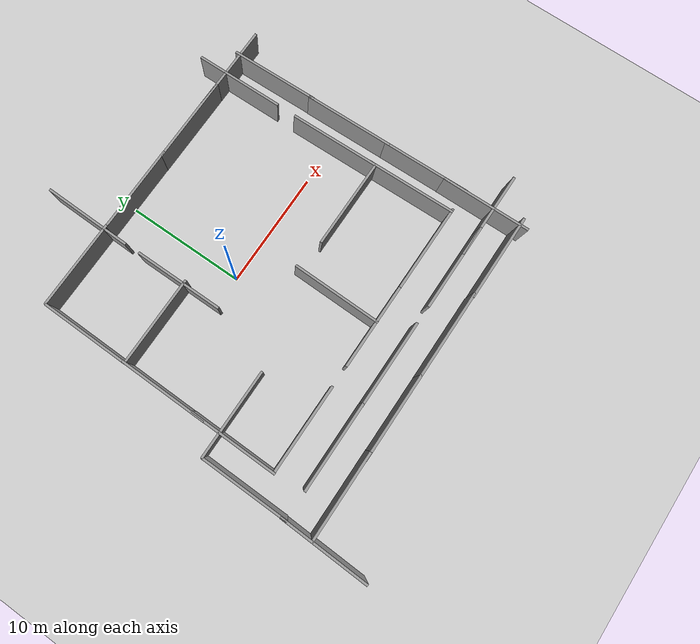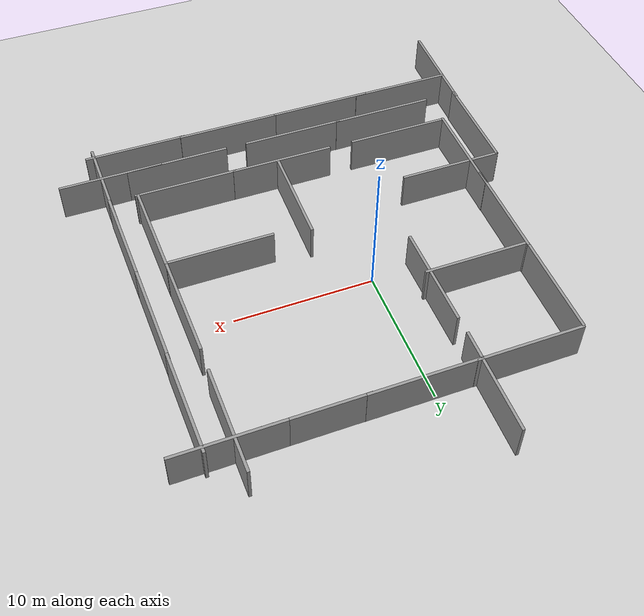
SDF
<sdf version="1.7">
 <world name="default">
  <light name="sun" type="directional">
   <pose>0 0 10 0 -0 0</pose>
   <diffuse>0.8 0.8 0.8 1</diffuse>
   <specular>0.2 0.2 0.2 1</specular>
   <attenuation>
    <range>1000</range>
    <constant>0.9</constant>
    <linear>0.01</linear>
    <quadratic>0.001</quadratic>
   </attenuation>
   <direction>-0.5 0.1 -0.9</direction>
   <spot><inner_angle>0</inner_angle><outer_angle>0</outer_angle><falloff>0</falloff></spot>
  </light>
  <model name="ground_plane">
   <static>1</static>
   <link name="link">
    <collision name="collision">
     <geometry><plane><normal>0 0 1</normal><size>100 100</size></plane></geometry>
     <surface>
      <contact><collide_bitmask>65535</collide_bitmask></contact>
      <friction><ode><mu>100</mu><mu2>50</mu2></ode></friction>
     </surface>
    </collision>
    <visual name="visual">
     <cast_shadows>0</cast_shadows>
     <geometry><plane><normal>0 0 1</normal><size>100 100</size></plane></geometry>
     <material>
      <script><uri>file://media/materials/scripts/gazebo.material</uri><name>Gazebo/Grey</name></script>
     </material>
    </visual>
   </link>
  </model>
  <gravity>0 0 -9.8</gravity>
  <magnetic_field>6e-06 2.3e-05 -4.2e-05</magnetic_field>
  <atmosphere type="adiabatic"/>
  <physics type="ode">
   <max_step_size>0.001</max_step_size>
   <real_time_factor>1</real_time_factor>
   <real_time_update_rate>1000</real_time_update_rate>
  </physics>
  <scene><ambient>0.4 0.4 0.4 1</ambient><background>0.7 0.7 0.7 1</background><shadows>1</shadows></scene>
  <spherical_coordinates>
   <surface_model>EARTH_WGS84</surface_model>
   <latitude_deg>0</latitude_deg>
   <longitude_deg>0</longitude_deg>
   <elevation>0</elevation>
   <heading_deg>0</heading_deg>
  </spherical_coordinates>
  <model name="grey_wall">
   <static>1</static>
   <link name="link">
    <pose>0 0 1.4 0 -0 0</pose>
    <collision name="collision"><geometry><box><size>7.5 0.2 2.8</size></box></geometry></collision>
    <visual name="visual">
     <cast_shadows>0</cast_shadows>
     <geometry><box><size>7.5 0.2 2.8</size></box></geometry>
     <material>
      <script>
       <uri>model://grey_wall/materials/scripts</uri>
       <uri>model://grey_wall/materials/textures</uri>
       <name>vrc/grey_wall</name>
      </script>
     </material>
    </visual>
   </link>
   <pose>-6.30997 10.1204 0 0 -0 0</pose>
  </model>
  <model name="grey_wall_0">
   <static>1</static>
   <link name="link">
    <pose>0 0 1.4 0 -0 0</pose>
    <collision name="collision"><geometry><box><size>7.5 0.2 2.8</size></box></geometry></collision>
    <visual name="visual">
     <cast_shadows>0</cast_shadows>
     <geometry><box><size>7.5 0.2 2.8</size></box></geometry>
     <material>
      <script>
       <uri>model://grey_wall/materials/scripts</uri>
       <uri>model://grey_wall/materials/textures</uri>
       <name>vrc/grey_wall</name>
      </script>
     </material>
    </visual>
   </link>
   <pose>1.01321 10.1008 0 0 -0 0</pose>
  </model>
  <model name="grey_wall_1">
   <static>1</static>
   <link name="link">
    <pose>0 0 1.4 0 -0 0</pose>
    <collision name="collision"><geometry><box><size>7.5 0.2 2.8</size></box></geometry></collision>
    <visual name="visual">
     <cast_shadows>0</cast_shadows>
     <geometry><box><size>7.5 0.2 2.8</size></box></geometry>
     <material>
      <script>
       <uri>model://grey_wall/materials/scripts</uri>
       <uri>model://grey_wall/materials/textures</uri>
       <name>vrc/grey_wall</name>
      </script>
     </material>
    </visual>
   </link>
   <pose>8.04157 10.088 0 0 -0 0</pose>
  </model>
  <model name="grey_wall_2">
   <static>1</static>
   <link name="link">
    <pose>0 0 1.4 0 -0 0</pose>
    <collision name="collision"><geometry><box><size>7.5 0.2 2.8</size></box></geometry></collision>
    <visual name="visual">
     <cast_shadows>0</cast_shadows>
     <geometry><box><size>7.5 0.2 2.8</size></box></geometry>
     <material>
      <script>
       <uri>model://grey_wall/materials/scripts</uri>
       <uri>model://grey_wall/materials/textures</uri>
       <name>vrc/grey_wall</name>
      </script>
     </material>
    </visual>
   </link>
   <pose>-10.0683 6.35593 0 0 0 -1.58463</pose>
  </model>
  <model name="grey_wall_2_clone">
   <static>1</static>
   <link name="link">
    <pose>0 0 1.4 0 -0 0</pose>
    <collision name="collision"><geometry><box><size>7.5 0.2 2.8</size></box></geometry></collision>
    <visual name="visual">
     <cast_shadows>0</cast_shadows>
     <geometry><box><size>7.5 0.2 2.8</size></box></geometry>
     <material>
      <script>
       <uri>model://grey_wall/materials/scripts</uri>
       <uri>model://grey_wall/materials/textures</uri>
       <name>vrc/grey_wall</name>
      </script>
     </material>
    </visual>
   </link>
   <pose>-10.1574 -0.932229 0 0 0 -1.58463</pose>
  </model>
  <model name="grey_wall_2_clone_0">
   <static>1</static>
   <link name="link">
    <pose>0 0 1.4 0 -0 0</pose>
    <collision name="collision"><geometry><box><size>7.5 0.2 2.8</size></box></geometry></collision>
    <visual name="visual">
     <cast_shadows>0</cast_shadows>
     <geometry><box><size>7.5 0.2 2.8</size></box></geometry>
     <material>
      <script>
       <uri>model://grey_wall/materials/scripts</uri>
       <uri>model://grey_wall/materials/textures</uri>
       <name>vrc/grey_wall</name>
      </script>
     </material>
    </visual>
   </link>
   <pose>-10.2246 -7.25317 0 0 0 -1.58463</pose>
  </model>
  <model name="grey_wall_2_clone_1">
   <static>1</static>
   <link name="link">
    <pose>0 0 1.4 0 -0 0</pose>
    <collision name="collision"><geometry><box><size>7.5 0.2 2.8</size></box></geometry></collision>
    <visual name="visual">
     <cast_shadows>0</cast_shadows>
     <geometry><box><size>7.5 0.2 2.8</size></box></geometry>
     <material>
      <script>
       <uri>model://grey_wall/materials/scripts</uri>
       <uri>model://grey_wall/materials/textures</uri>
       <name>vrc/grey_wall</name>
      </script>
     </material>
    </visual>
   </link>
   <pose>-6.56753 -10.888 0 0 -0 3.13837</pose>
  </model>
  <model name="grey_wall_2_clone_1_clone">
   <static>1</static>
   <link name="link">
    <pose>0 0 1.4 0 -0 0</pose>
    <collision name="collision"><geometry><box><size>7.5 0.2 2.8</size></box></geometry></collision>
    <visual name="visual">
     <cast_shadows>0</cast_shadows>
     <geometry><box><size>7.5 0.2 2.8</size></box></geometry>
     <material>
      <script>
       <uri>model://grey_wall/materials/scripts</uri>
       <uri>model://grey_wall/materials/textures</uri>
       <name>vrc/grey_wall</name>
      </script>
     </material>
    </visual>
   </link>
   <pose>2.66595 -10.9311 0 0 -0 3.13837</pose>
  </model>
  <model name="grey_wall_2_clone_1_clone_0">
   <static>1</static>
   <link name="link">
    <pose>0 0 1.4 0 -0 0</pose>
    <collision name="collision"><geometry><box><size>7.5 0.2 2.8</size></box></geometry></collision>
    <visual name="visual">
     <cast_shadows>0</cast_shadows>
     <geometry><box><size>7.5 0.2 2.8</size></box></geometry>
     <material>
      <script>
       <uri>model://grey_wall/materials/scripts</uri>
       <uri>model://grey_wall/materials/textures</uri>
       <name>vrc/grey_wall</name>
      </script>
     </material>
    </visual>
   </link>
   <pose>9.90164 -10.9645 0 0 -0 3.13837</pose>
  </model>
  <model name="grey_wall_2_clone_1_clone_1">
   <static>1</static>
   <link name="link">
    <pose>0 0 1.4 0 -0 0</pose>
    <collision name="collision"><geometry><box><size>7.5 0.2 2.8</size></box></geometry></collision>
    <visual name="visual">
     <cast_shadows>0</cast_shadows>
     <geometry><box><size>7.5 0.2 2.8</size></box></geometry>
     <material>
      <script>
       <uri>model://grey_wall/materials/scripts</uri>
       <uri>model://grey_wall/materials/textures</uri>
       <name>vrc/grey_wall</name>
      </script>
     </material>
    </visual>
   </link>
   <pose>13.3314 -7.31576 0 0 -0 1.59491</pose>
  </model>
  <model name="grey_wall_2_clone_1_clone_1_clone">
   <static>1</static>
   <link name="link">
    <pose>0 0 1.4 0 -0 0</pose>
    <collision name="collision"><geometry><box><size>7.5 0.2 2.8</size></box></geometry></collision>
    <visual name="visual">
     <cast_shadows>0</cast_shadows>
     <geometry><box><size>7.5 0.2 2.8</size></box></geometry>
     <material>
      <script>
       <uri>model://grey_wall/materials/scripts</uri>
       <uri>model://grey_wall/materials/textures</uri>
       <name>vrc/grey_wall</name>
      </script>
     </material>
    </visual>
   </link>
   <pose>13.145 -0.293998 0 0 -0 1.59491</pose>
  </model>
  <model name="grey_wall_2_clone_1_clone_1_clone_0">
   <static>1</static>
   <link name="link">
    <pose>0 0 1.4 0 -0 0</pose>
    <collision name="collision"><geometry><box><size>7.5 0.2 2.8</size></box></geometry></collision>
    <visual name="visual">
     <cast_shadows>0</cast_shadows>
     <geometry><box><size>7.5 0.2 2.8</size></box></geometry>
     <material>
      <script>
       <uri>model://grey_wall/materials/scripts</uri>
       <uri>model://grey_wall/materials/textures</uri>
       <name>vrc/grey_wall</name>
      </script>
     </material>
    </visual>
   </link>
   <pose>15.1854 -0.314675 0 0 -0 1.59491</pose>
  </model>
  <model name="grey_wall_2_clone_1_clone_1_clone_1">
   <static>1</static>
   <link name="link">
    <pose>0 0 1.4 0 -0 0</pose>
    <collision name="collision"><geometry><box><size>7.5 0.2 2.8</size></box></geometry></collision>
    <visual name="visual">
     <cast_shadows>0</cast_shadows>
     <geometry><box><size>7.5 0.2 2.8</size></box></geometry>
     <material>
      <script>
       <uri>model://grey_wall/materials/scripts</uri>
       <uri>model://grey_wall/materials/textures</uri>
       <name>vrc/grey_wall</name>
      </script>
     </material>
    </visual>
   </link>
   <pose>15.3558 -7.44679 0 0 -0 1.59491</pose>
  </model>
  <model name="grey_wall_2_clone_1_clone_0_clone">
   <static>1</static>
   <link name="link">
    <pose>0 0 1.4 0 -0 0</pose>
    <collision name="collision"><geometry><box><size>7.5 0.2 2.8</size></box></geometry></collision>
    <visual name="visual">
     <cast_shadows>0</cast_shadows>
     <geometry><box><size>7.5 0.2 2.8</size></box></geometry>
     <material>
      <script>
       <uri>model://grey_wall/materials/scripts</uri>
       <uri>model://grey_wall/materials/textures</uri>
       <name>vrc/grey_wall</name>
      </script>
     </material>
    </visual>
   </link>
   <pose>9.86574 -13.4984 0 0 -0 3.13837</pose>
  </model>
  <model name="grey_wall_2_clone_1_clone_0_clone_0">
   <static>1</static>
   <link name="link">
    <pose>0 0 1.4 0 -0 0</pose>
    <collision name="collision"><geometry><box><size>7.5 0.2 2.8</size></box></geometry></collision>
    <visual name="visual">
     <cast_shadows>0</cast_shadows>
     <geometry><box><size>7.5 0.2 2.8</size></box></geometry>
     <material>
      <script>
       <uri>model://grey_wall/materials/scripts</uri>
       <uri>model://grey_wall/materials/textures</uri>
       <name>vrc/grey_wall</name>
      </script>
     </material>
    </visual>
   </link>
   <pose>0.878904 -13.4476 0 0 -0 3.13837</pose>
  </model>
  <model name="grey_wall_2_clone_1_clone_0_clone_1">
   <static>1</static>
   <link name="link">
    <pose>0 0 1.4 0 -0 0</pose>
    <collision name="collision"><geometry><box><size>7.5 0.2 2.8</size></box></geometry></collision>
    <visual name="visual">
     <cast_shadows>0</cast_shadows>
     <geometry><box><size>7.5 0.2 2.8</size></box></geometry>
     <material>
      <script>
       <uri>model://grey_wall/materials/scripts</uri>
       <uri>model://grey_wall/materials/textures</uri>
       <name>vrc/grey_wall</name>
      </script>
     </material>
    </visual>
   </link>
   <pose>-6.31528 -13.4102 0 0 -0 3.13837</pose>
  </model>
  <model name="grey_wall_2_clone_1_clone_0_clone_2">
   <static>1</static>
   <link name="link">
    <pose>0 0 1.4 0 -0 0</pose>
    <collision name="collision"><geometry><box><size>7.5 0.2 2.8</size></box></geometry></collision>
    <visual name="visual">
     <cast_shadows>0</cast_shadows>
     <geometry><box><size>7.5 0.2 2.8</size></box></geometry>
     <material>
      <script>
       <uri>model://grey_wall/materials/scripts</uri>
       <uri>model://grey_wall/materials/textures</uri>
       <name>vrc/grey_wall</name>
      </script>
     </material>
    </visual>
   </link>
   <pose>-12.371 -9.76414 0 0 -0 1.55819</pose>
  </model>
  <model name="grey_wall_2_clone_1_clone_0_clone_3">
   <static>1</static>
   <link name="link">
    <pose>0 0 1.4 0 -0 0</pose>
    <collision name="collision"><geometry><box><size>7.5 0.2 2.8</size></box></geometry></collision>
    <visual name="visual">
     <cast_shadows>0</cast_shadows>
     <geometry><box><size>7.5 0.2 2.8</size></box></geometry>
     <material>
      <script>
       <uri>model://grey_wall/materials/scripts</uri>
       <uri>model://grey_wall/materials/textures</uri>
       <name>vrc/grey_wall</name>
      </script>
     </material>
    </visual>
   </link>
   <pose>-8.87046 -15.7278 0 0 -0 3.13837</pose>
  </model>
  <model name="grey_wall_2_clone_1_clone_0_clone_4">
   <static>1</static>
   <link name="link">
    <pose>0 0 1.4 0 -0 0</pose>
    <collision name="collision"><geometry><box><size>7.5 0.2 2.8</size></box></geometry></collision>
    <visual name="visual">
     <cast_shadows>0</cast_shadows>
     <geometry><box><size>7.5 0.2 2.8</size></box></geometry>
     <material>
      <script>
       <uri>model://grey_wall/materials/scripts</uri>
       <uri>model://grey_wall/materials/textures</uri>
       <name>vrc/grey_wall</name>
      </script>
     </material>
    </visual>
   </link>
   <pose>-12.5611 -16.7085 0 0 -0 1.53869</pose>
  </model>
  <model name="grey_wall_2_clone_1_clone_0_clone_3_clone">
   <static>1</static>
   <link name="link">
    <pose>0 0 1.4 0 -0 0</pose>
    <collision name="collision"><geometry><box><size>7.5 0.2 2.8</size></box></geometry></collision>
    <visual name="visual">
     <cast_shadows>0</cast_shadows>
     <geometry><box><size>7.5 0.2 2.8</size></box></geometry>
     <material>
      <script>
       <uri>model://grey_wall/materials/scripts</uri>
       <uri>model://grey_wall/materials/textures</uri>
       <name>vrc/grey_wall</name>
      </script>
     </material>
    </visual>
   </link>
   <pose>-2.17743 -15.77 0 0 -0 3.13837</pose>
  </model>
  <model name="grey_wall_2_clone_1_clone_0_clone_3_clone_0">
   <static>1</static>
   <link name="link">
    <pose>0 0 1.4 0 -0 0</pose>
    <collision name="collision"><geometry><box><size>7.5 0.2 2.8</size></box></geometry></collision>
    <visual name="visual">
     <cast_shadows>0</cast_shadows>
     <geometry><box><size>7.5 0.2 2.8</size></box></geometry>
     <material>
      <script>
       <uri>model://grey_wall/materials/scripts</uri>
       <uri>model://grey_wall/materials/textures</uri>
       <name>vrc/grey_wall</name>
      </script>
     </material>
    </visual>
   </link>
   <pose>5.24369 -15.7918 0 0 -0 3.13837</pose>
  </model>
  <model name="grey_wall_2_clone_1_clone_0_clone_3_clone_1">
   <static>1</static>
   <link name="link">
    <pose>0 0 1.4 0 -0 0</pose>
    <collision name="collision"><geometry><box><size>7.5 0.2 2.8</size></box></geometry></collision>
    <visual name="visual">
     <cast_shadows>0</cast_shadows>
     <geometry><box><size>7.5 0.2 2.8</size></box></geometry>
     <material>
      <script>
       <uri>model://grey_wall/materials/scripts</uri>
       <uri>model://grey_wall/materials/textures</uri>
       <name>vrc/grey_wall</name>
      </script>
     </material>
    </visual>
   </link>
   <pose>12.3706 -15.8512 0 0 -0 3.13837</pose>
  </model>
  <model name="grey_wall_2_clone_1_clone_0_clone_3_clone_2">
   <static>1</static>
   <link name="link">
    <pose>0 0 1.4 0 -0 0</pose>
    <collision name="collision"><geometry><box><size>7.5 0.2 2.8</size></box></geometry></collision>
    <visual name="visual">
     <cast_shadows>0</cast_shadows>
     <geometry><box><size>7.5 0.2 2.8</size></box></geometry>
     <material>
      <script>
       <uri>model://grey_wall/materials/scripts</uri>
       <uri>model://grey_wall/materials/textures</uri>
       <name>vrc/grey_wall</name>
      </script>
     </material>
    </visual>
   </link>
   <pose>15.4436 -12.8279 0 0 -0 1.58624</pose>
  </model>
  <model name="grey_wall_2_clone_1_clone_0_clone_clone">
   <static>1</static>
   <link name="link">
    <pose>0 0 1.4 0 -0 0</pose>
    <collision name="collision"><geometry><box><size>7.5 0.2 2.8</size></box></geometry></collision>
    <visual name="visual">
     <cast_shadows>0</cast_shadows>
     <geometry><box><size>7.5 0.2 2.8</size></box></geometry>
     <material>
      <script>
       <uri>model://grey_wall/materials/scripts</uri>
       <uri>model://grey_wall/materials/textures</uri>
       <name>vrc/grey_wall</name>
      </script>
     </material>
    </visual>
   </link>
   <pose>14.786 -13.5151 0 0 -0 3.13837</pose>
  </model>
  <model name="grey_wall_clone">
   <static>1</static>
   <link name="link">
    <pose>0 0 1.4 0 -0 0</pose>
    <collision name="collision"><geometry><box><size>7.5 0.2 2.8</size></box></geometry></collision>
    <visual name="visual">
     <cast_shadows>0</cast_shadows>
     <geometry><box><size>7.5 0.2 2.8</size></box></geometry>
     <material>
      <script>
       <uri>model://grey_wall/materials/scripts</uri>
       <uri>model://grey_wall/materials/textures</uri>
       <name>vrc/grey_wall</name>
      </script>
     </material>
    </visual>
   </link>
   <pose>-8.62605 -6.07176 0 0 -0 0</pose>
  </model>
  <model name="grey_wall_clone_0">
   <static>1</static>
   <link name="link">
    <pose>0 0 1.4 0 -0 0</pose>
    <collision name="collision"><geometry><box><size>7.5 0.2 2.8</size></box></geometry></collision>
    <visual name="visual">
     <cast_shadows>0</cast_shadows>
     <geometry><box><size>7.5 0.2 2.8</size></box></geometry>
     <material>
      <script>
       <uri>model://grey_wall/materials/scripts</uri>
       <uri>model://grey_wall/materials/textures</uri>
       <name>vrc/grey_wall</name>
      </script>
     </material>
    </visual>
   </link>
   <pose>-6.32173 2.57938 0 0 -0 0</pose>
  </model>
  <model name="grey_wall_clone_1">
   <static>1</static>
   <link name="link">
    <pose>0 0 1.4 0 -0 0</pose>
    <collision name="collision"><geometry><box><size>7.5 0.2 2.8</size></box></geometry></collision>
    <visual name="visual">
     <cast_shadows>0</cast_shadows>
     <geometry><box><size>7.5 0.2 2.8</size></box></geometry>
     <material>
      <script>
       <uri>model://grey_wall/materials/scripts</uri>
       <uri>model://grey_wall/materials/textures</uri>
       <name>vrc/grey_wall</name>
      </script>
     </material>
    </visual>
   </link>
   <pose>-2.89798 3.06137 0 0 0 -1.57111</pose>
  </model>
  <model name="grey_wall_clone_2">
   <static>1</static>
   <link name="link">
    <pose>0 0 1.4 0 -0 0</pose>
    <collision name="collision"><geometry><box><size>7.5 0.2 2.8</size></box></geometry></collision>
    <visual name="visual">
     <cast_shadows>0</cast_shadows>
     <geometry><box><size>7.5 0.2 2.8</size></box></geometry>
     <material>
      <script>
       <uri>model://grey_wall/materials/scripts</uri>
       <uri>model://grey_wall/materials/textures</uri>
       <name>vrc/grey_wall</name>
      </script>
     </material>
    </visual>
   </link>
   <pose>-2.86945 11.7517 0 0 0 -1.58744</pose>
  </model>
  <model name="grey_wall_clone_3">
   <static>1</static>
   <link name="link">
    <pose>0 0 1.4 0 -0 0</pose>
    <collision name="collision"><geometry><box><size>7.5 0.2 2.8</size></box></geometry></collision>
    <visual name="visual">
     <cast_shadows>0</cast_shadows>
     <geometry><box><size>7.5 0.2 2.8</size></box></geometry>
     <material>
      <script>
       <uri>model://grey_wall/materials/scripts</uri>
       <uri>model://grey_wall/materials/textures</uri>
       <name>vrc/grey_wall</name>
      </script>
     </material>
    </visual>
   </link>
   <pose>13.4075 10.089 0 0 -0 0</pose>
  </model>
  <model name="grey_wall_clone_4">
   <static>1</static>
   <link name="link">
    <pose>0 0 1.4 0 -0 0</pose>
    <collision name="collision"><geometry><box><size>7.5 0.2 2.8</size></box></geometry></collision>
    <visual name="visual">
     <cast_shadows>0</cast_shadows>
     <geometry><box><size>7.5 0.2 2.8</size></box></geometry>
     <material>
      <script>
       <uri>model://grey_wall/materials/scripts</uri>
       <uri>model://grey_wall/materials/textures</uri>
       <name>vrc/grey_wall</name>
      </script>
     </material>
    </visual>
   </link>
   <pose>15.0346 6.75015 0 0 0 -1.54496</pose>
  </model>
  <model name="grey_wall_clone_5">
   <static>1</static>
   <link name="link">
    <pose>0 0 1.4 0 -0 0</pose>
    <collision name="collision"><geometry><box><size>7.5 0.2 2.8</size></box></geometry></collision>
    <visual name="visual">
     <cast_shadows>0</cast_shadows>
     <geometry><box><size>7.5 0.2 2.8</size></box></geometry>
     <material>
      <script>
       <uri>model://grey_wall/materials/scripts</uri>
       <uri>model://grey_wall/materials/textures</uri>
       <name>vrc/grey_wall</name>
      </script>
     </material>
    </visual>
   </link>
   <pose>13.0121 8.79302 0 0 0 -1.55625</pose>
  </model>
  <model name="grey_wall_clone_6">
   <static>1</static>
   <link name="link">
    <pose>0 0 1.4 0 -0 0</pose>
    <collision name="collision"><geometry><box><size>7.5 0.2 2.8</size></box></geometry></collision>
    <visual name="visual">
     <cast_shadows>0</cast_shadows>
     <geometry><box><size>7.5 0.2 2.8</size></box></geometry>
     <material>
      <script>
       <uri>model://grey_wall/materials/scripts</uri>
       <uri>model://grey_wall/materials/textures</uri>
       <name>vrc/grey_wall</name>
      </script>
     </material>
    </visual>
   </link>
   <pose>9.40772 -4.1107 0 0 -0 0</pose>
  </model>
  <model name="grey_wall_clone_7">
   <static>1</static>
   <link name="link">
    <pose>0 0 1.4 0 -0 0</pose>
    <collision name="collision"><geometry><box><size>7.5 0.2 2.8</size></box></geometry></collision>
    <visual name="visual">
     <cast_shadows>0</cast_shadows>
     <geometry><box><size>7.5 0.2 2.8</size></box></geometry>
     <material>
      <script>
       <uri>model://grey_wall/materials/scripts</uri>
       <uri>model://grey_wall/materials/textures</uri>
       <name>vrc/grey_wall</name>
      </script>
     </material>
    </visual>
   </link>
   <pose>3.03463 -7.30108 0 0 0 -1.58585</pose>
  </model>
 </world>
</sdf>
